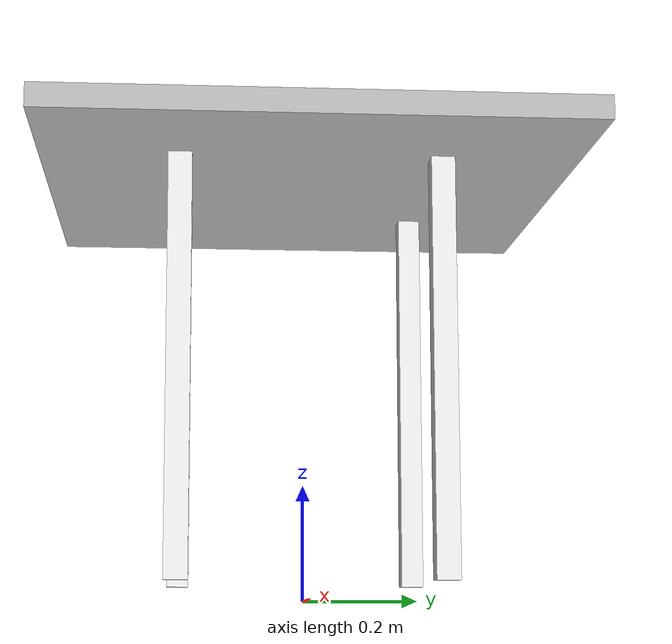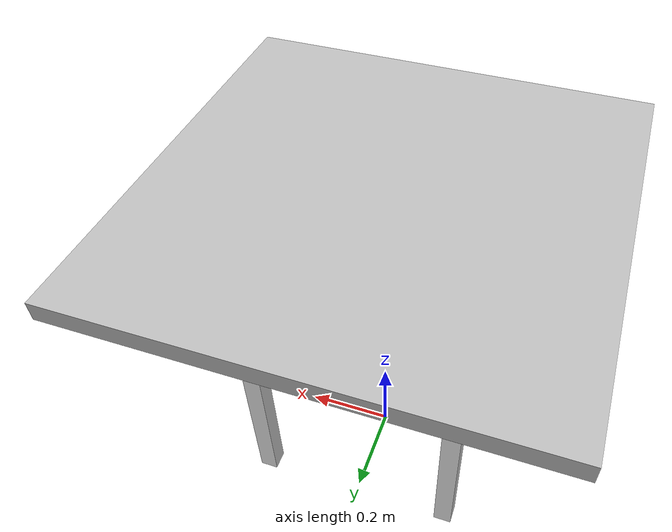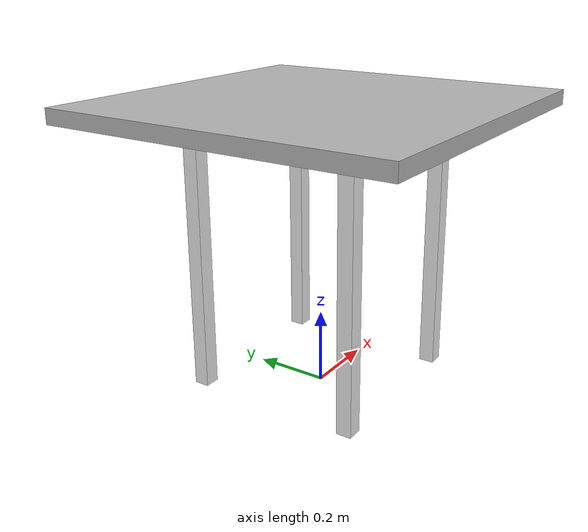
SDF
<?xml version="1.0"?>

<sdf version="1.6">
  <model name="end_table">
    <static>true</static>

    <link name="top_plate">
      <pose>0 0 0.755 0 0 0</pose>
      <collision name="top_plate_collision">
        <geometry>
          <box>
            <size>0.913 0.913 0.04</size>
          </box>
        </geometry>
        <surface>
          <contact>
            <collide_bitmask>0x01</collide_bitmask>
          </contact>
        </surface>
      </collision>
      <visual name="top_plate_visual">
        <geometry>
          <box>
            <size>0.913 0.913 0.04</size>
          </box>
        </geometry>
        <material>
          <script>
            <uri>model://end_table/materials/scripts</uri>
            <uri>model://end_table/materials/textures</uri>
            <name>grid/Image</name>
          </script>
        </material>
      </visual>
    </link>
    <link name="leg1">
      <pose>0.22 0.22 0.4 0 0 0</pose>
      <collision name="leg1_collision">
        <geometry>
          <box>
            <size>0.04 0.04 0.74</size>
          </box>
        </geometry>
      </collision>
      <visual name="leg1_visual">
        <geometry>
          <box>
            <size>0.04 0.04 0.74</size>
          </box>
        </geometry>
        <material>
          <script>
            <uri>file://media/materials/scripts/gazebo.material</uri>
            <name>Gazebo/White</name>
          </script>
        </material>
      </visual>
    </link>
    <link name="leg2">
      <pose>-0.22 0.22 0.4 0 0 0</pose>
      <collision name="leg2_collision">
        <geometry>
          <box>
            <size>0.04 0.04 0.74</size>
          </box>
        </geometry>
      </collision>
      <visual name="leg2_visual">
        <geometry>
          <box>
            <size>0.04 0.04 0.74</size>
          </box>
        </geometry>
        <material>
          <script>
            <uri>file://media/materials/scripts/gazebo.material</uri>
            <name>Gazebo/White</name>
          </script>
        </material>
      </visual>
    </link>
    <link name="leg3">
      <pose>0.22 -0.22 0.4 0 0 0</pose>
      <collision name="leg3_collision">
        <geometry>
          <box>
            <size>0.04 0.04 0.74</size>
          </box>
        </geometry>
      </collision>
      <visual name="leg3_visual">
        <geometry>
          <box>
            <size>0.04 0.04 0.74</size>
          </box>
        </geometry>
        <material>
          <script>
            <uri>file://media/materials/scripts/gazebo.material</uri>
            <name>Gazebo/White</name>
          </script>
        </material>
      </visual>
    </link>
    <link name="leg4">
      <pose>-0.22 -0.22 0.4 0 0 0</pose>
      <collision name="leg4_collision">
        <geometry>
          <box>
            <size>0.04 0.04 0.74</size>
          </box>
        </geometry>
      </collision>
      <visual name="leg4_visual">
        <geometry>
          <box>
            <size>0.04 0.04 0.74</size>
          </box>
        </geometry>
        <material>
          <script>
            <uri>file://media/materials/scripts/gazebo.material</uri>
            <name>Gazebo/White</name>
          </script>
        </material>
      </visual>
    </link>
  </model>
</sdf>
